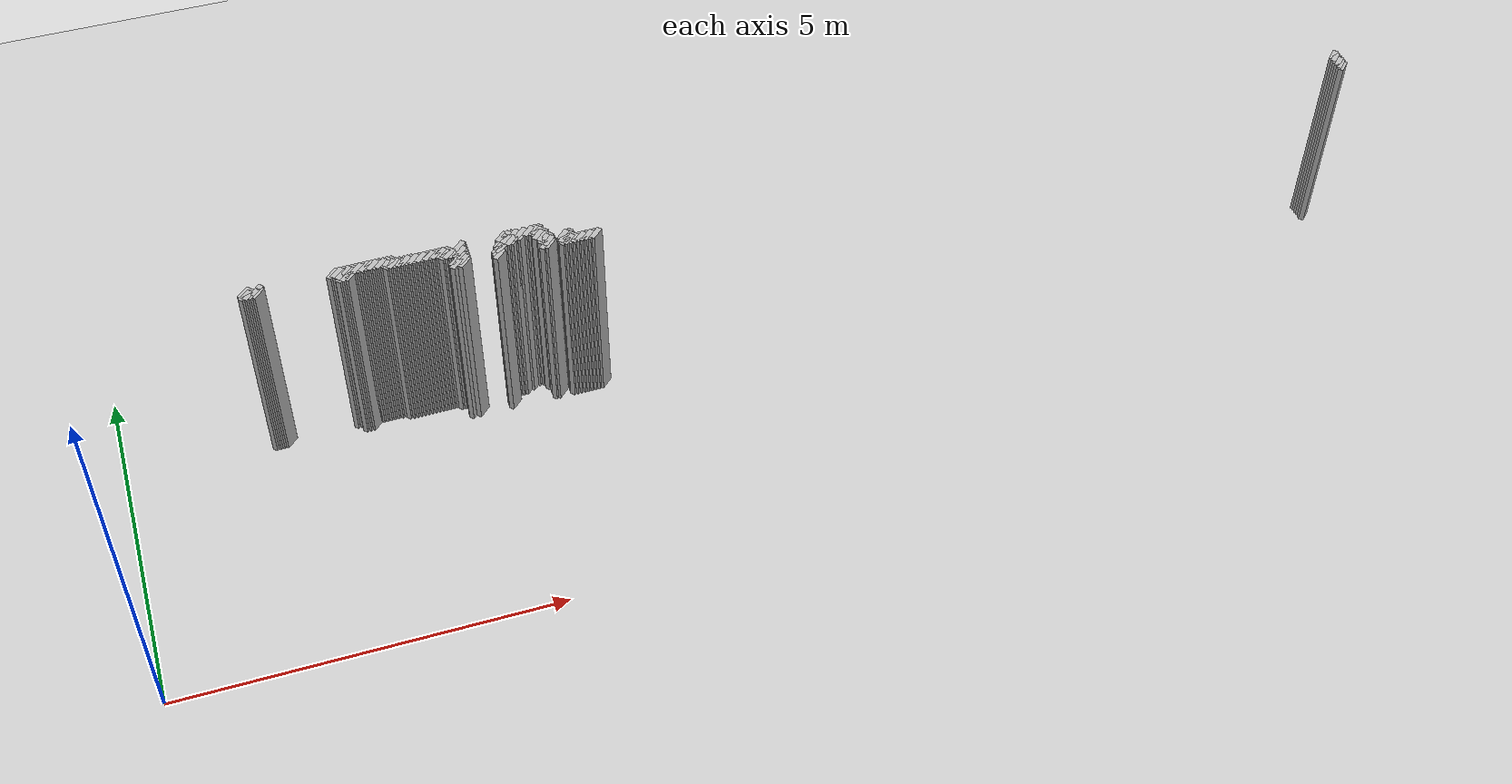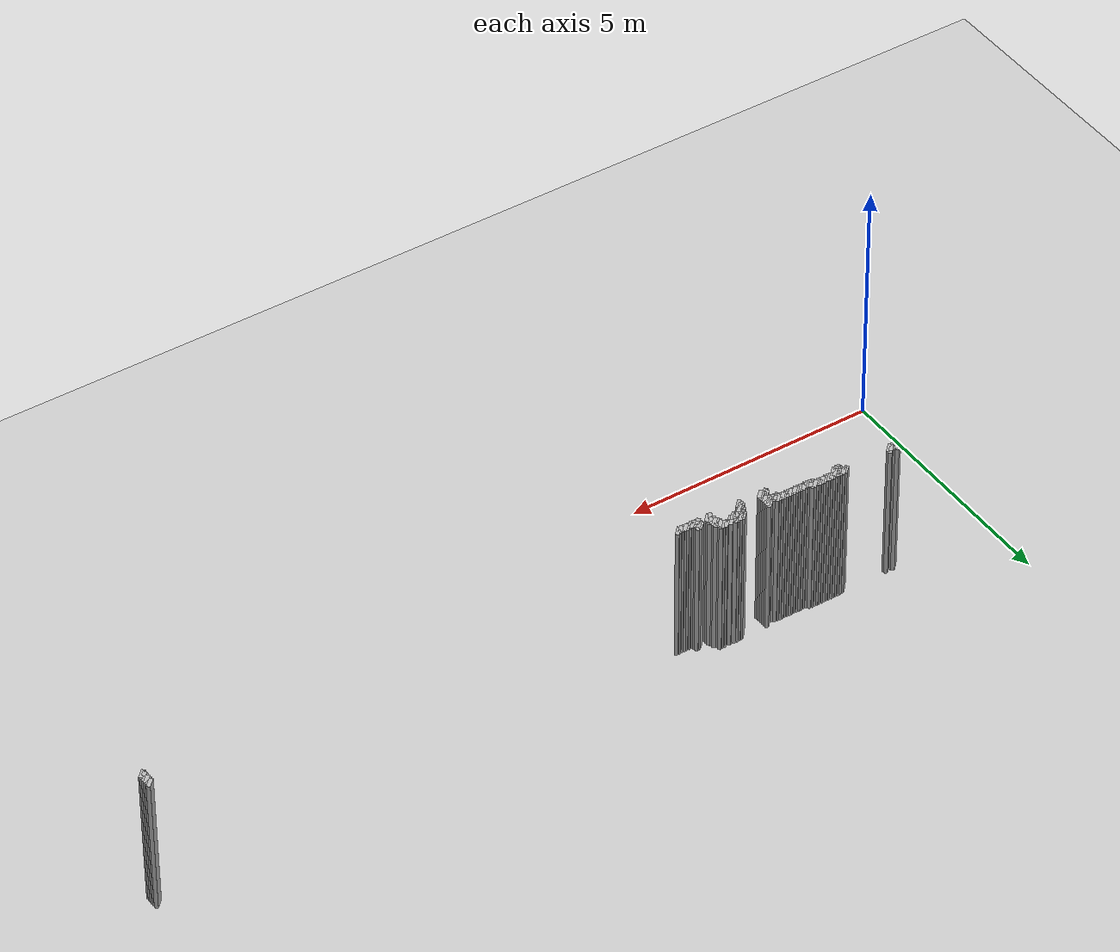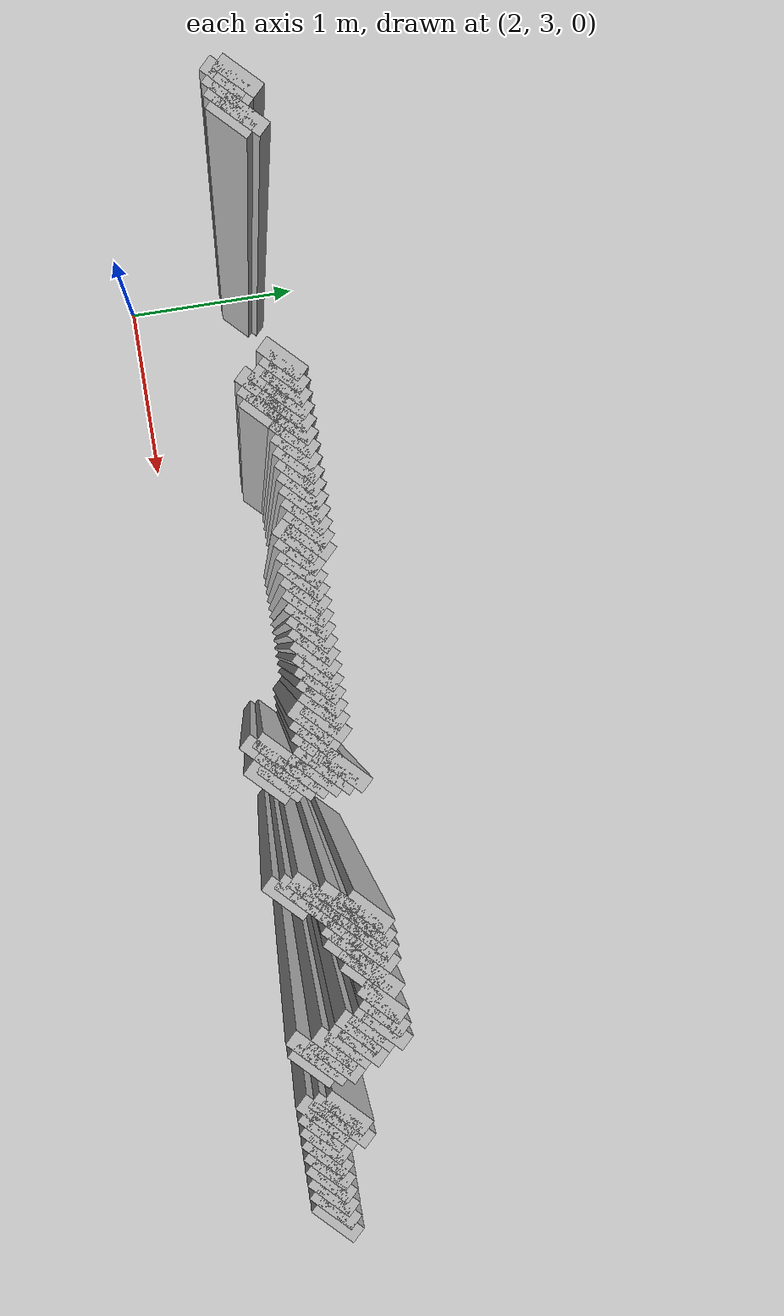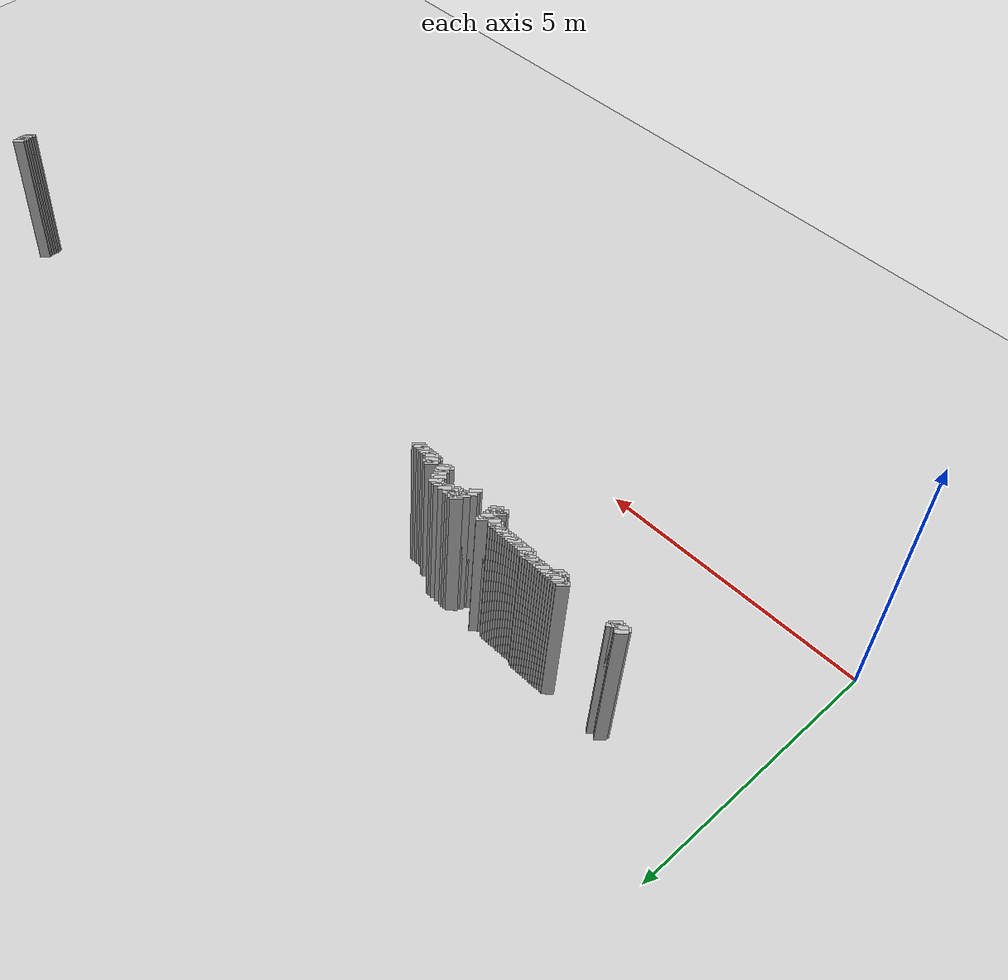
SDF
<sdf version="1.5">
 <world name="default">
  <include><uri>model://ground_plane</uri></include>
  <include><uri>model://sun</uri></include>
  <model name="grey_wall_3394">
   <static>1</static>
   <link name="link">
    <pose>2.0 3.7  1.4 0 0 -0.7853981633974483</pose>
    <collision name="collision">
     <geometry><box><size>0.0707106781186545 .2  2.8</size></box></geometry>
    </collision>
    <visual name="visual">
     <cast_shadows>0</cast_shadows>
     <geometry><box><size>0.0707106781186545 .2  2.8</size></box></geometry>
    </visual>
   </link>
  </model>
  <model name="grey_wall_3395">
   <static>1</static>
   <link name="link">
    <pose>2.15 3.7  1.4 0 0 -0.7853981633974483</pose>
    <collision name="collision">
     <geometry><box><size>0.0707106781186545 .2  2.8</size></box></geometry>
    </collision>
    <visual name="visual">
     <cast_shadows>0</cast_shadows>
     <geometry><box><size>0.0707106781186545 .2  2.8</size></box></geometry>
    </visual>
   </link>
  </model>
  <model name="grey_wall_3396">
   <static>1</static>
   <link name="link">
    <pose>3.1 3.7  1.4 0 0 -0.7853981633974483</pose>
    <collision name="collision">
     <geometry><box><size>0.0707106781186545 .2  2.8</size></box></geometry>
    </collision>
    <visual name="visual">
     <cast_shadows>0</cast_shadows>
     <geometry><box><size>0.0707106781186545 .2  2.8</size></box></geometry>
    </visual>
   </link>
  </model>
  <model name="grey_wall_3397">
   <static>1</static>
   <link name="link">
    <pose>3.1500000000000004 3.7  1.4 0 0 -0.7853981633974483</pose>
    <collision name="collision">
     <geometry><box><size>0.0707106781186545 .2  2.8</size></box></geometry>
    </collision>
    <visual name="visual">
     <cast_shadows>0</cast_shadows>
     <geometry><box><size>0.0707106781186545 .2  2.8</size></box></geometry>
    </visual>
   </link>
  </model>
  <model name="grey_wall_3398">
   <static>1</static>
   <link name="link">
    <pose>3.2 3.7  1.4 0 0 -0.7853981633974483</pose>
    <collision name="collision">
     <geometry><box><size>0.0707106781186545 .2  2.8</size></box></geometry>
    </collision>
    <visual name="visual">
     <cast_shadows>0</cast_shadows>
     <geometry><box><size>0.0707106781186545 .2  2.8</size></box></geometry>
    </visual>
   </link>
  </model>
  <model name="grey_wall_3399">
   <static>1</static>
   <link name="link">
    <pose>3.25 3.7  1.4 0 0 -0.7853981633974483</pose>
    <collision name="collision">
     <geometry><box><size>0.0707106781186545 .2  2.8</size></box></geometry>
    </collision>
    <visual name="visual">
     <cast_shadows>0</cast_shadows>
     <geometry><box><size>0.0707106781186545 .2  2.8</size></box></geometry>
    </visual>
   </link>
  </model>
  <model name="grey_wall_3400">
   <static>1</static>
   <link name="link">
    <pose>3.3000000000000003 3.7  1.4 0 0 -0.7853981633974483</pose>
    <collision name="collision">
     <geometry><box><size>0.0707106781186545 .2  2.8</size></box></geometry>
    </collision>
    <visual name="visual">
     <cast_shadows>0</cast_shadows>
     <geometry><box><size>0.0707106781186545 .2  2.8</size></box></geometry>
    </visual>
   </link>
  </model>
  <model name="grey_wall_3401">
   <static>1</static>
   <link name="link">
    <pose>3.35 3.7  1.4 0 0 -0.7853981633974483</pose>
    <collision name="collision">
     <geometry><box><size>0.0707106781186545 .2  2.8</size></box></geometry>
    </collision>
    <visual name="visual">
     <cast_shadows>0</cast_shadows>
     <geometry><box><size>0.0707106781186545 .2  2.8</size></box></geometry>
    </visual>
   </link>
  </model>
  <model name="grey_wall_3402">
   <static>1</static>
   <link name="link">
    <pose>3.4000000000000004 3.7  1.4 0 0 -0.7853981633974483</pose>
    <collision name="collision">
     <geometry><box><size>0.0707106781186545 .2  2.8</size></box></geometry>
    </collision>
    <visual name="visual">
     <cast_shadows>0</cast_shadows>
     <geometry><box><size>0.0707106781186545 .2  2.8</size></box></geometry>
    </visual>
   </link>
  </model>
  <model name="grey_wall_3403">
   <static>1</static>
   <link name="link">
    <pose>3.45 3.7  1.4 0 0 -0.7853981633974483</pose>
    <collision name="collision">
     <geometry><box><size>0.0707106781186545 .2  2.8</size></box></geometry>
    </collision>
    <visual name="visual">
     <cast_shadows>0</cast_shadows>
     <geometry><box><size>0.0707106781186545 .2  2.8</size></box></geometry>
    </visual>
   </link>
  </model>
  <model name="grey_wall_3404">
   <static>1</static>
   <link name="link">
    <pose>3.5 3.7  1.4 0 0 -0.7853981633974483</pose>
    <collision name="collision">
     <geometry><box><size>0.0707106781186545 .2  2.8</size></box></geometry>
    </collision>
    <visual name="visual">
     <cast_shadows>0</cast_shadows>
     <geometry><box><size>0.0707106781186545 .2  2.8</size></box></geometry>
    </visual>
   </link>
  </model>
  <model name="grey_wall_3405">
   <static>1</static>
   <link name="link">
    <pose>3.5500000000000003 3.7  1.4 0 0 -0.7853981633974483</pose>
    <collision name="collision">
     <geometry><box><size>0.0707106781186545 .2  2.8</size></box></geometry>
    </collision>
    <visual name="visual">
     <cast_shadows>0</cast_shadows>
     <geometry><box><size>0.0707106781186545 .2  2.8</size></box></geometry>
    </visual>
   </link>
  </model>
  <model name="grey_wall_3406">
   <static>1</static>
   <link name="link">
    <pose>3.6 3.7  1.4 0 0 -0.7853981633974483</pose>
    <collision name="collision">
     <geometry><box><size>0.0707106781186545 .2  2.8</size></box></geometry>
    </collision>
    <visual name="visual">
     <cast_shadows>0</cast_shadows>
     <geometry><box><size>0.0707106781186545 .2  2.8</size></box></geometry>
    </visual>
   </link>
  </model>
  <model name="grey_wall_3407">
   <static>1</static>
   <link name="link">
    <pose>3.6500000000000004 3.7  1.4 0 0 -0.7853981633974483</pose>
    <collision name="collision">
     <geometry><box><size>0.0707106781186545 .2  2.8</size></box></geometry>
    </collision>
    <visual name="visual">
     <cast_shadows>0</cast_shadows>
     <geometry><box><size>0.0707106781186545 .2  2.8</size></box></geometry>
    </visual>
   </link>
  </model>
  <model name="grey_wall_3408">
   <static>1</static>
   <link name="link">
    <pose>3.7 3.7  1.4 0 0 -0.7853981633974483</pose>
    <collision name="collision">
     <geometry><box><size>0.0707106781186545 .2  2.8</size></box></geometry>
    </collision>
    <visual name="visual">
     <cast_shadows>0</cast_shadows>
     <geometry><box><size>0.0707106781186545 .2  2.8</size></box></geometry>
    </visual>
   </link>
  </model>
  <model name="grey_wall_3409">
   <static>1</static>
   <link name="link">
    <pose>3.75 3.7  1.4 0 0 -0.7853981633974483</pose>
    <collision name="collision">
     <geometry><box><size>0.0707106781186545 .2  2.8</size></box></geometry>
    </collision>
    <visual name="visual">
     <cast_shadows>0</cast_shadows>
     <geometry><box><size>0.0707106781186545 .2  2.8</size></box></geometry>
    </visual>
   </link>
  </model>
  <model name="grey_wall_3410">
   <static>1</static>
   <link name="link">
    <pose>3.8000000000000003 3.7  1.4 0 0 -0.7853981633974483</pose>
    <collision name="collision">
     <geometry><box><size>0.0707106781186545 .2  2.8</size></box></geometry>
    </collision>
    <visual name="visual">
     <cast_shadows>0</cast_shadows>
     <geometry><box><size>0.0707106781186545 .2  2.8</size></box></geometry>
    </visual>
   </link>
  </model>
  <model name="grey_wall_3411">
   <static>1</static>
   <link name="link">
    <pose>4.7 3.7  1.4 0 0 -0.7853981633974394</pose>
    <collision name="collision">
     <geometry><box><size>0.07071067811865513 .2  2.8</size></box></geometry>
    </collision>
    <visual name="visual">
     <cast_shadows>0</cast_shadows>
     <geometry><box><size>0.07071067811865513 .2  2.8</size></box></geometry>
    </visual>
   </link>
  </model>
  <model name="grey_wall_3412">
   <static>1</static>
   <link name="link">
    <pose>5.25 3.7  1.4 0 0 -0.7853981633974394</pose>
    <collision name="collision">
     <geometry><box><size>0.07071067811865513 .2  2.8</size></box></geometry>
    </collision>
    <visual name="visual">
     <cast_shadows>0</cast_shadows>
     <geometry><box><size>0.07071067811865513 .2  2.8</size></box></geometry>
    </visual>
   </link>
  </model>
  <model name="grey_wall_3413">
   <static>1</static>
   <link name="link">
    <pose>5.300000000000001 3.7  1.4 0 0 -0.7853981633974394</pose>
    <collision name="collision">
     <geometry><box><size>0.07071067811865513 .2  2.8</size></box></geometry>
    </collision>
    <visual name="visual">
     <cast_shadows>0</cast_shadows>
     <geometry><box><size>0.07071067811865513 .2  2.8</size></box></geometry>
    </visual>
   </link>
  </model>
  <model name="grey_wall_3414">
   <static>1</static>
   <link name="link">
    <pose>5.3500000000000005 3.7  1.4 0 0 -0.7853981633974394</pose>
    <collision name="collision">
     <geometry><box><size>0.07071067811865513 .2  2.8</size></box></geometry>
    </collision>
    <visual name="visual">
     <cast_shadows>0</cast_shadows>
     <geometry><box><size>0.07071067811865513 .2  2.8</size></box></geometry>
    </visual>
   </link>
  </model>
  <model name="grey_wall_3415">
   <static>1</static>
   <link name="link">
    <pose>5.4 3.7  1.4 0 0 -0.7853981633974394</pose>
    <collision name="collision">
     <geometry><box><size>0.07071067811865513 .2  2.8</size></box></geometry>
    </collision>
    <visual name="visual">
     <cast_shadows>0</cast_shadows>
     <geometry><box><size>0.07071067811865513 .2  2.8</size></box></geometry>
    </visual>
   </link>
  </model>
  <model name="grey_wall_3416">
   <static>1</static>
   <link name="link">
    <pose>5.5 3.7  1.4 0 0 -0.7853981633974394</pose>
    <collision name="collision">
     <geometry><box><size>0.07071067811865513 .2  2.8</size></box></geometry>
    </collision>
    <visual name="visual">
     <cast_shadows>0</cast_shadows>
     <geometry><box><size>0.07071067811865513 .2  2.8</size></box></geometry>
    </visual>
   </link>
  </model>
  <model name="grey_wall_3417">
   <static>1</static>
   <link name="link">
    <pose>5.6000000000000005 3.7  1.4 0 0 -0.7853981633974394</pose>
    <collision name="collision">
     <geometry><box><size>0.07071067811865513 .2  2.8</size></box></geometry>
    </collision>
    <visual name="visual">
     <cast_shadows>0</cast_shadows>
     <geometry><box><size>0.07071067811865513 .2  2.8</size></box></geometry>
    </visual>
   </link>
  </model>
  <model name="grey_wall_3418">
   <static>1</static>
   <link name="link">
    <pose>5.65 3.7  1.4 0 0 -0.7853981633974394</pose>
    <collision name="collision">
     <geometry><box><size>0.07071067811865513 .2  2.8</size></box></geometry>
    </collision>
    <visual name="visual">
     <cast_shadows>0</cast_shadows>
     <geometry><box><size>0.07071067811865513 .2  2.8</size></box></geometry>
    </visual>
   </link>
  </model>
  <model name="grey_wall_3419">
   <static>1</static>
   <link name="link">
    <pose>5.7 3.7  1.4 0 0 -0.7853981633974394</pose>
    <collision name="collision">
     <geometry><box><size>0.07071067811865513 .2  2.8</size></box></geometry>
    </collision>
    <visual name="visual">
     <cast_shadows>0</cast_shadows>
     <geometry><box><size>0.07071067811865513 .2  2.8</size></box></geometry>
    </visual>
   </link>
  </model>
  <model name="grey_wall_3420">
   <static>1</static>
   <link name="link">
    <pose>17.05 3.7  1.4 0 0 -0.7853981633974749</pose>
    <collision name="collision">
     <geometry><box><size>0.07071067811865261 .2  2.8</size></box></geometry>
    </collision>
    <visual name="visual">
     <cast_shadows>0</cast_shadows>
     <geometry><box><size>0.07071067811865261 .2  2.8</size></box></geometry>
    </visual>
   </link>
  </model>
  <model name="grey_wall_3421">
   <static>1</static>
   <link name="link">
    <pose>2.0 3.6500000000000004  1.4 0 0 -0.7853981633974483</pose>
    <collision name="collision">
     <geometry><box><size>0.0707106781186545 .2  2.8</size></box></geometry>
    </collision>
    <visual name="visual">
     <cast_shadows>0</cast_shadows>
     <geometry><box><size>0.0707106781186545 .2  2.8</size></box></geometry>
    </visual>
   </link>
  </model>
  <model name="grey_wall_3422">
   <static>1</static>
   <link name="link">
    <pose>2.0500000000000003 3.6500000000000004  1.4 0 0 -0.7853981633974483</pose>
    <collision name="collision">
     <geometry><box><size>0.0707106781186545 .2  2.8</size></box></geometry>
    </collision>
    <visual name="visual">
     <cast_shadows>0</cast_shadows>
     <geometry><box><size>0.0707106781186545 .2  2.8</size></box></geometry>
    </visual>
   </link>
  </model>
  <model name="grey_wall_3423">
   <static>1</static>
   <link name="link">
    <pose>2.1 3.6500000000000004  1.4 0 0 -0.7853981633974483</pose>
    <collision name="collision">
     <geometry><box><size>0.0707106781186545 .2  2.8</size></box></geometry>
    </collision>
    <visual name="visual">
     <cast_shadows>0</cast_shadows>
     <geometry><box><size>0.0707106781186545 .2  2.8</size></box></geometry>
    </visual>
   </link>
  </model>
  <model name="grey_wall_3424">
   <static>1</static>
   <link name="link">
    <pose>2.15 3.6500000000000004  1.4 0 0 -0.7853981633974483</pose>
    <collision name="collision">
     <geometry><box><size>0.0707106781186545 .2  2.8</size></box></geometry>
    </collision>
    <visual name="visual">
     <cast_shadows>0</cast_shadows>
     <geometry><box><size>0.0707106781186545 .2  2.8</size></box></geometry>
    </visual>
   </link>
  </model>
  <model name="grey_wall_3425">
   <static>1</static>
   <link name="link">
    <pose>3.2 3.6500000000000004  1.4 0 0 -0.7853981633974483</pose>
    <collision name="collision">
     <geometry><box><size>0.0707106781186545 .2  2.8</size></box></geometry>
    </collision>
    <visual name="visual">
     <cast_shadows>0</cast_shadows>
     <geometry><box><size>0.0707106781186545 .2  2.8</size></box></geometry>
    </visual>
   </link>
  </model>
  <model name="grey_wall_3426">
   <static>1</static>
   <link name="link">
    <pose>3.3000000000000003 3.6500000000000004  1.4 0 0 -0.7853981633974483</pose>
    <collision name="collision">
     <geometry><box><size>0.0707106781186545 .2  2.8</size></box></geometry>
    </collision>
    <visual name="visual">
     <cast_shadows>0</cast_shadows>
     <geometry><box><size>0.0707106781186545 .2  2.8</size></box></geometry>
    </visual>
   </link>
  </model>
  <model name="grey_wall_3427">
   <static>1</static>
   <link name="link">
    <pose>3.8000000000000003 3.6500000000000004  1.4 0 0 -0.7853981633974483</pose>
    <collision name="collision">
     <geometry><box><size>0.0707106781186545 .2  2.8</size></box></geometry>
    </collision>
    <visual name="visual">
     <cast_shadows>0</cast_shadows>
     <geometry><box><size>0.0707106781186545 .2  2.8</size></box></geometry>
    </visual>
   </link>
  </model>
  <model name="grey_wall_3428">
   <static>1</static>
   <link name="link">
    <pose>3.85 3.6500000000000004  1.4 0 0 -0.7853981633974483</pose>
    <collision name="collision">
     <geometry><box><size>0.0707106781186545 .2  2.8</size></box></geometry>
    </collision>
    <visual name="visual">
     <cast_shadows>0</cast_shadows>
     <geometry><box><size>0.0707106781186545 .2  2.8</size></box></geometry>
    </visual>
   </link>
  </model>
  <model name="grey_wall_3429">
   <static>1</static>
   <link name="link">
    <pose>3.9000000000000004 3.6500000000000004  1.4 0 0 -0.7853981633974483</pose>
    <collision name="collision">
     <geometry><box><size>0.0707106781186545 .2  2.8</size></box></geometry>
    </collision>
    <visual name="visual">
     <cast_shadows>0</cast_shadows>
     <geometry><box><size>0.0707106781186545 .2  2.8</size></box></geometry>
    </visual>
   </link>
  </model>
  <model name="grey_wall_3430">
   <static>1</static>
   <link name="link">
    <pose>3.95 3.6500000000000004  1.4 0 0 -0.7853981633974483</pose>
    <collision name="collision">
     <geometry><box><size>0.0707106781186545 .2  2.8</size></box></geometry>
    </collision>
    <visual name="visual">
     <cast_shadows>0</cast_shadows>
     <geometry><box><size>0.0707106781186545 .2  2.8</size></box></geometry>
    </visual>
   </link>
  </model>
  <model name="grey_wall_3431">
   <static>1</static>
   <link name="link">
    <pose>4.0 3.6500000000000004  1.4 0 0 -0.7853981633974438</pose>
    <collision name="collision">
     <geometry><box><size>0.07071067811865482 .2  2.8</size></box></geometry>
    </collision>
    <visual name="visual">
     <cast_shadows>0</cast_shadows>
     <geometry><box><size>0.07071067811865482 .2  2.8</size></box></geometry>
    </visual>
   </link>
  </model>
  <model name="grey_wall_3432">
   <static>1</static>
   <link name="link">
    <pose>4.05 3.6500000000000004  1.4 0 0 -0.7853981633974394</pose>
    <collision name="collision">
     <geometry><box><size>0.07071067811865513 .2  2.8</size></box></geometry>
    </collision>
    <visual name="visual">
     <cast_shadows>0</cast_shadows>
     <geometry><box><size>0.07071067811865513 .2  2.8</size></box></geometry>
    </visual>
   </link>
  </model>
  <model name="grey_wall_3433">
   <static>1</static>
   <link name="link">
    <pose>4.1000000000000005 3.6500000000000004  1.4 0 0 -0.7853981633974394</pose>
    <collision name="collision">
     <geometry><box><size>0.07071067811865513 .2  2.8</size></box></geometry>
    </collision>
    <visual name="visual">
     <cast_shadows>0</cast_shadows>
     <geometry><box><size>0.07071067811865513 .2  2.8</size></box></geometry>
    </visual>
   </link>
  </model>
  <model name="grey_wall_3434">
   <static>1</static>
   <link name="link">
    <pose>4.15 3.6500000000000004  1.4 0 0 -0.7853981633974394</pose>
    <collision name="collision">
     <geometry><box><size>0.07071067811865513 .2  2.8</size></box></geometry>
    </collision>
    <visual name="visual">
     <cast_shadows>0</cast_shadows>
     <geometry><box><size>0.07071067811865513 .2  2.8</size></box></geometry>
    </visual>
   </link>
  </model>
  <model name="grey_wall_3435">
   <static>1</static>
   <link name="link">
    <pose>4.2 3.6500000000000004  1.4 0 0 -0.7853981633974394</pose>
    <collision name="collision">
     <geometry><box><size>0.07071067811865513 .2  2.8</size></box></geometry>
    </collision>
    <visual name="visual">
     <cast_shadows>0</cast_shadows>
     <geometry><box><size>0.07071067811865513 .2  2.8</size></box></geometry>
    </visual>
   </link>
  </model>
  <model name="grey_wall_3436">
   <static>1</static>
   <link name="link">
    <pose>4.25 3.6500000000000004  1.4 0 0 -0.7853981633974394</pose>
    <collision name="collision">
     <geometry><box><size>0.07071067811865513 .2  2.8</size></box></geometry>
    </collision>
    <visual name="visual">
     <cast_shadows>0</cast_shadows>
     <geometry><box><size>0.07071067811865513 .2  2.8</size></box></geometry>
    </visual>
   </link>
  </model>
  <model name="grey_wall_3437">
   <static>1</static>
   <link name="link">
    <pose>4.3 3.6500000000000004  1.4 0 0 -0.7853981633974394</pose>
    <collision name="collision">
     <geometry><box><size>0.07071067811865513 .2  2.8</size></box></geometry>
    </collision>
    <visual name="visual">
     <cast_shadows>0</cast_shadows>
     <geometry><box><size>0.07071067811865513 .2  2.8</size></box></geometry>
    </visual>
   </link>
  </model>
  <model name="grey_wall_3438">
   <static>1</static>
   <link name="link">
    <pose>4.3500000000000005 3.6500000000000004  1.4 0 0 -0.7853981633974394</pose>
    <collision name="collision">
     <geometry><box><size>0.07071067811865513 .2  2.8</size></box></geometry>
    </collision>
    <visual name="visual">
     <cast_shadows>0</cast_shadows>
     <geometry><box><size>0.07071067811865513 .2  2.8</size></box></geometry>
    </visual>
   </link>
  </model>
  <model name="grey_wall_3439">
   <static>1</static>
   <link name="link">
    <pose>4.4 3.6500000000000004  1.4 0 0 -0.7853981633974394</pose>
    <collision name="collision">
     <geometry><box><size>0.07071067811865513 .2  2.8</size></box></geometry>
    </collision>
    <visual name="visual">
     <cast_shadows>0</cast_shadows>
     <geometry><box><size>0.07071067811865513 .2  2.8</size></box></geometry>
    </visual>
   </link>
  </model>
  <model name="grey_wall_3440">
   <static>1</static>
   <link name="link">
    <pose>4.45 3.6500000000000004  1.4 0 0 -0.7853981633974394</pose>
    <collision name="collision">
     <geometry><box><size>0.07071067811865513 .2  2.8</size></box></geometry>
    </collision>
    <visual name="visual">
     <cast_shadows>0</cast_shadows>
     <geometry><box><size>0.07071067811865513 .2  2.8</size></box></geometry>
    </visual>
   </link>
  </model>
  <model name="grey_wall_3441">
   <static>1</static>
   <link name="link">
    <pose>4.5 3.6500000000000004  1.4 0 0 -0.7853981633974394</pose>
    <collision name="collision">
     <geometry><box><size>0.07071067811865513 .2  2.8</size></box></geometry>
    </collision>
    <visual name="visual">
     <cast_shadows>0</cast_shadows>
     <geometry><box><size>0.07071067811865513 .2  2.8</size></box></geometry>
    </visual>
   </link>
  </model>
  <model name="grey_wall_3442">
   <static>1</static>
   <link name="link">
    <pose>4.7 3.6500000000000004  1.4 0 0 -0.7853981633974394</pose>
    <collision name="collision">
     <geometry><box><size>0.07071067811865513 .2  2.8</size></box></geometry>
    </collision>
    <visual name="visual">
     <cast_shadows>0</cast_shadows>
     <geometry><box><size>0.07071067811865513 .2  2.8</size></box></geometry>
    </visual>
   </link>
  </model>
  <model name="grey_wall_3443">
   <static>1</static>
   <link name="link">
    <pose>5.25 3.6500000000000004  1.4 0 0 -0.7853981633974394</pose>
    <collision name="collision">
     <geometry><box><size>0.07071067811865513 .2  2.8</size></box></geometry>
    </collision>
    <visual name="visual">
     <cast_shadows>0</cast_shadows>
     <geometry><box><size>0.07071067811865513 .2  2.8</size></box></geometry>
    </visual>
   </link>
  </model>
  <model name="grey_wall_3444">
   <static>1</static>
   <link name="link">
    <pose>5.300000000000001 3.6500000000000004  1.4 0 0 -0.7853981633974394</pose>
    <collision name="collision">
     <geometry><box><size>0.07071067811865513 .2  2.8</size></box></geometry>
    </collision>
    <visual name="visual">
     <cast_shadows>0</cast_shadows>
     <geometry><box><size>0.07071067811865513 .2  2.8</size></box></geometry>
    </visual>
   </link>
  </model>
  <model name="grey_wall_3445">
   <static>1</static>
   <link name="link">
    <pose>5.4 3.6500000000000004  1.4 0 0 -0.7853981633974394</pose>
    <collision name="collision">
     <geometry><box><size>0.07071067811865513 .2  2.8</size></box></geometry>
    </collision>
    <visual name="visual">
     <cast_shadows>0</cast_shadows>
     <geometry><box><size>0.07071067811865513 .2  2.8</size></box></geometry>
    </visual>
   </link>
  </model>
  <model name="grey_wall_3446">
   <static>1</static>
   <link name="link">
    <pose>5.45 3.6500000000000004  1.4 0 0 -0.7853981633974394</pose>
    <collision name="collision">
     <geometry><box><size>0.07071067811865513 .2  2.8</size></box></geometry>
    </collision>
    <visual name="visual">
     <cast_shadows>0</cast_shadows>
     <geometry><box><size>0.07071067811865513 .2  2.8</size></box></geometry>
    </visual>
   </link>
  </model>
  <model name="grey_wall_3447">
   <static>1</static>
   <link name="link">
    <pose>5.5 3.6500000000000004  1.4 0 0 -0.7853981633974394</pose>
    <collision name="collision">
     <geometry><box><size>0.07071067811865513 .2  2.8</size></box></geometry>
    </collision>
    <visual name="visual">
     <cast_shadows>0</cast_shadows>
     <geometry><box><size>0.07071067811865513 .2  2.8</size></box></geometry>
    </visual>
   </link>
  </model>
  <model name="grey_wall_3448">
   <static>1</static>
   <link name="link">
    <pose>5.7 3.6500000000000004  1.4 0 0 -0.7853981633974394</pose>
    <collision name="collision">
     <geometry><box><size>0.07071067811865513 .2  2.8</size></box></geometry>
    </collision>
    <visual name="visual">
     <cast_shadows>0</cast_shadows>
     <geometry><box><size>0.07071067811865513 .2  2.8</size></box></geometry>
    </visual>
   </link>
  </model>
  <model name="grey_wall_3449">
   <static>1</static>
   <link name="link">
    <pose>17.05 3.6500000000000004  1.4 0 0 -0.7853981633974749</pose>
    <collision name="collision">
     <geometry><box><size>0.07071067811865261 .2  2.8</size></box></geometry>
    </collision>
    <visual name="visual">
     <cast_shadows>0</cast_shadows>
     <geometry><box><size>0.07071067811865261 .2  2.8</size></box></geometry>
    </visual>
   </link>
  </model>
  <model name="grey_wall_3450">
   <static>1</static>
   <link name="link">
    <pose>3.2 3.6  1.4 0 0 -0.7853981633974483</pose>
    <collision name="collision">
     <geometry><box><size>0.0707106781186545 .2  2.8</size></box></geometry>
    </collision>
    <visual name="visual">
     <cast_shadows>0</cast_shadows>
     <geometry><box><size>0.0707106781186545 .2  2.8</size></box></geometry>
    </visual>
   </link>
  </model>
  <model name="grey_wall_3451">
   <static>1</static>
   <link name="link">
    <pose>3.25 3.6  1.4 0 0 -0.7853981633974483</pose>
    <collision name="collision">
     <geometry><box><size>0.0707106781186545 .2  2.8</size></box></geometry>
    </collision>
    <visual name="visual">
     <cast_shadows>0</cast_shadows>
     <geometry><box><size>0.0707106781186545 .2  2.8</size></box></geometry>
    </visual>
   </link>
  </model>
  <model name="grey_wall_3452">
   <static>1</static>
   <link name="link">
    <pose>3.3000000000000003 3.6  1.4 0 0 -0.7853981633974483</pose>
    <collision name="collision">
     <geometry><box><size>0.0707106781186545 .2  2.8</size></box></geometry>
    </collision>
    <visual name="visual">
     <cast_shadows>0</cast_shadows>
     <geometry><box><size>0.0707106781186545 .2  2.8</size></box></geometry>
    </visual>
   </link>
  </model>
  <model name="grey_wall_3453">
   <static>1</static>
   <link name="link">
    <pose>4.5 3.6  1.4 0 0 -0.7853981633974394</pose>
    <collision name="collision">
     <geometry><box><size>0.07071067811865513 .2  2.8</size></box></geometry>
    </collision>
    <visual name="visual">
     <cast_shadows>0</cast_shadows>
     <geometry><box><size>0.07071067811865513 .2  2.8</size></box></geometry>
    </visual>
   </link>
  </model>
  <model name="grey_wall_3454">
   <static>1</static>
   <link name="link">
    <pose>4.55 3.6  1.4 0 0 -0.7853981633974394</pose>
    <collision name="collision">
     <geometry><box><size>0.07071067811865513 .2  2.8</size></box></geometry>
    </collision>
    <visual name="visual">
     <cast_shadows>0</cast_shadows>
     <geometry><box><size>0.07071067811865513 .2  2.8</size></box></geometry>
    </visual>
   </link>
  </model>
  <model name="grey_wall_3455">
   <static>1</static>
   <link name="link">
    <pose>4.6000000000000005 3.6  1.4 0 0 -0.7853981633974394</pose>
    <collision name="collision">
     <geometry><box><size>0.07071067811865513 .2  2.8</size></box></geometry>
    </collision>
    <visual name="visual">
     <cast_shadows>0</cast_shadows>
     <geometry><box><size>0.07071067811865513 .2  2.8</size></box></geometry>
    </visual>
   </link>
  </model>
  <model name="grey_wall_3456">
   <static>1</static>
   <link name="link">
    <pose>4.65 3.6  1.4 0 0 -0.7853981633974394</pose>
    <collision name="collision">
     <geometry><box><size>0.07071067811865513 .2  2.8</size></box></geometry>
    </collision>
    <visual name="visual">
     <cast_shadows>0</cast_shadows>
     <geometry><box><size>0.07071067811865513 .2  2.8</size></box></geometry>
    </visual>
   </link>
  </model>
  <model name="grey_wall_3457">
   <static>1</static>
   <link name="link">
    <pose>4.7 3.6  1.4 0 0 -0.7853981633974394</pose>
    <collision name="collision">
     <geometry><box><size>0.07071067811865513 .2  2.8</size></box></geometry>
    </collision>
    <visual name="visual">
     <cast_shadows>0</cast_shadows>
     <geometry><box><size>0.07071067811865513 .2  2.8</size></box></geometry>
    </visual>
   </link>
  </model>
  <model name="grey_wall_3458">
   <static>1</static>
   <link name="link">
    <pose>5.2 3.6  1.4 0 0 -0.7853981633974394</pose>
    <collision name="collision">
     <geometry><box><size>0.07071067811865513 .2  2.8</size></box></geometry>
    </collision>
    <visual name="visual">
     <cast_shadows>0</cast_shadows>
     <geometry><box><size>0.07071067811865513 .2  2.8</size></box></geometry>
    </visual>
   </link>
  </model>
  <model name="grey_wall_3459">
   <static>1</static>
   <link name="link">
    <pose>5.25 3.6  1.4 0 0 -0.7853981633974394</pose>
    <collision name="collision">
     <geometry><box><size>0.07071067811865513 .2  2.8</size></box></geometry>
    </collision>
    <visual name="visual">
     <cast_shadows>0</cast_shadows>
     <geometry><box><size>0.07071067811865513 .2  2.8</size></box></geometry>
    </visual>
   </link>
  </model>
  <model name="grey_wall_3460">
   <static>1</static>
   <link name="link">
    <pose>5.300000000000001 3.6  1.4 0 0 -0.7853981633974394</pose>
    <collision name="collision">
     <geometry><box><size>0.07071067811865513 .2  2.8</size></box></geometry>
    </collision>
    <visual name="visual">
     <cast_shadows>0</cast_shadows>
     <geometry><box><size>0.07071067811865513 .2  2.8</size></box></geometry>
    </visual>
   </link>
  </model>
  <model name="grey_wall_3461">
   <static>1</static>
   <link name="link">
    <pose>5.3500000000000005 3.6  1.4 0 0 -0.7853981633974394</pose>
    <collision name="collision">
     <geometry><box><size>0.07071067811865513 .2  2.8</size></box></geometry>
    </collision>
    <visual name="visual">
     <cast_shadows>0</cast_shadows>
     <geometry><box><size>0.07071067811865513 .2  2.8</size></box></geometry>
    </visual>
   </link>
  </model>
  <model name="grey_wall_3462">
   <static>1</static>
   <link name="link">
    <pose>5.4 3.6  1.4 0 0 -0.7853981633974394</pose>
    <collision name="collision">
     <geometry><box><size>0.07071067811865513 .2  2.8</size></box></geometry>
    </collision>
    <visual name="visual">
     <cast_shadows>0</cast_shadows>
     <geometry><box><size>0.07071067811865513 .2  2.8</size></box></geometry>
    </visual>
   </link>
  </model>
  <model name="grey_wall_3463">
   <static>1</static>
   <link name="link">
    <pose>5.7 3.6  1.4 0 0 -0.7853981633974394</pose>
    <collision name="collision">
     <geometry><box><size>0.07071067811865513 .2  2.8</size></box></geometry>
    </collision>
    <visual name="visual">
     <cast_shadows>0</cast_shadows>
     <geometry><box><size>0.07071067811865513 .2  2.8</size></box></geometry>
    </visual>
   </link>
  </model>
  <model name="grey_wall_3464">
   <static>1</static>
   <link name="link">
    <pose>5.75 3.6  1.4 0 0 -0.7853981633974394</pose>
    <collision name="collision">
     <geometry><box><size>0.07071067811865513 .2  2.8</size></box></geometry>
    </collision>
    <visual name="visual">
     <cast_shadows>0</cast_shadows>
     <geometry><box><size>0.07071067811865513 .2  2.8</size></box></geometry>
    </visual>
   </link>
  </model>
  <model name="grey_wall_3465">
   <static>1</static>
   <link name="link">
    <pose>17.05 3.6  1.4 0 0 -0.7853981633974749</pose>
    <collision name="collision">
     <geometry><box><size>0.07071067811865261 .2  2.8</size></box></geometry>
    </collision>
    <visual name="visual">
     <cast_shadows>0</cast_shadows>
     <geometry><box><size>0.07071067811865261 .2  2.8</size></box></geometry>
    </visual>
   </link>
  </model>
  <model name="grey_wall_3466">
   <static>1</static>
   <link name="link">
    <pose>4.7 3.5500000000000003  1.4 0 0 -0.7853981633974394</pose>
    <collision name="collision">
     <geometry><box><size>0.07071067811865513 .2  2.8</size></box></geometry>
    </collision>
    <visual name="visual">
     <cast_shadows>0</cast_shadows>
     <geometry><box><size>0.07071067811865513 .2  2.8</size></box></geometry>
    </visual>
   </link>
  </model>
  <model name="grey_wall_3467">
   <static>1</static>
   <link name="link">
    <pose>5.2 3.5500000000000003  1.4 0 0 -0.7853981633974394</pose>
    <collision name="collision">
     <geometry><box><size>0.07071067811865513 .2  2.8</size></box></geometry>
    </collision>
    <visual name="visual">
     <cast_shadows>0</cast_shadows>
     <geometry><box><size>0.07071067811865513 .2  2.8</size></box></geometry>
    </visual>
   </link>
  </model>
  <model name="grey_wall_3468">
   <static>1</static>
   <link name="link">
    <pose>5.75 3.5500000000000003  1.4 0 0 -0.7853981633974394</pose>
    <collision name="collision">
     <geometry><box><size>0.07071067811865513 .2  2.8</size></box></geometry>
    </collision>
    <visual name="visual">
     <cast_shadows>0</cast_shadows>
     <geometry><box><size>0.07071067811865513 .2  2.8</size></box></geometry>
    </visual>
   </link>
  </model>
  <model name="grey_wall_3469">
   <static>1</static>
   <link name="link">
    <pose>17.05 3.5500000000000003  1.4 0 0 -0.7853981633974749</pose>
    <collision name="collision">
     <geometry><box><size>0.07071067811865261 .2  2.8</size></box></geometry>
    </collision>
    <visual name="visual">
     <cast_shadows>0</cast_shadows>
     <geometry><box><size>0.07071067811865261 .2  2.8</size></box></geometry>
    </visual>
   </link>
  </model>
  <model name="grey_wall_3470">
   <static>1</static>
   <link name="link">
    <pose>4.7 3.5  1.4 0 0 -0.7853981633974394</pose>
    <collision name="collision">
     <geometry><box><size>0.07071067811865513 .2  2.8</size></box></geometry>
    </collision>
    <visual name="visual">
     <cast_shadows>0</cast_shadows>
     <geometry><box><size>0.07071067811865513 .2  2.8</size></box></geometry>
    </visual>
   </link>
  </model>
  <model name="grey_wall_3471">
   <static>1</static>
   <link name="link">
    <pose>5.15 3.5  1.4 0 0 -0.7853981633974394</pose>
    <collision name="collision">
     <geometry><box><size>0.07071067811865513 .2  2.8</size></box></geometry>
    </collision>
    <visual name="visual">
     <cast_shadows>0</cast_shadows>
     <geometry><box><size>0.07071067811865513 .2  2.8</size></box></geometry>
    </visual>
   </link>
  </model>
  <model name="grey_wall_3472">
   <static>1</static>
   <link name="link">
    <pose>5.2 3.5  1.4 0 0 -0.7853981633974394</pose>
    <collision name="collision">
     <geometry><box><size>0.07071067811865513 .2  2.8</size></box></geometry>
    </collision>
    <visual name="visual">
     <cast_shadows>0</cast_shadows>
     <geometry><box><size>0.07071067811865513 .2  2.8</size></box></geometry>
    </visual>
   </link>
  </model>
  <model name="grey_wall_3473">
   <static>1</static>
   <link name="link">
    <pose>5.75 3.5  1.4 0 0 -0.7853981633974394</pose>
    <collision name="collision">
     <geometry><box><size>0.07071067811865513 .2  2.8</size></box></geometry>
    </collision>
    <visual name="visual">
     <cast_shadows>0</cast_shadows>
     <geometry><box><size>0.07071067811865513 .2  2.8</size></box></geometry>
    </visual>
   </link>
  </model>
  <model name="grey_wall_3474">
   <static>1</static>
   <link name="link">
    <pose>5.800000000000001 3.5  1.4 0 0 -0.7853981633974394</pose>
    <collision name="collision">
     <geometry><box><size>0.07071067811865513 .2  2.8</size></box></geometry>
    </collision>
    <visual name="visual">
     <cast_shadows>0</cast_shadows>
     <geometry><box><size>0.07071067811865513 .2  2.8</size></box></geometry>
    </visual>
   </link>
  </model>
  <model name="grey_wall_3475">
   <static>1</static>
   <link name="link">
    <pose>6.0 3.5  1.4 0 0 -0.7853981633974394</pose>
    <collision name="collision">
     <geometry><box><size>0.07071067811865513 .2  2.8</size></box></geometry>
    </collision>
    <visual name="visual">
     <cast_shadows>0</cast_shadows>
     <geometry><box><size>0.07071067811865513 .2  2.8</size></box></geometry>
    </visual>
   </link>
  </model>
  <model name="grey_wall_3476">
   <static>1</static>
   <link name="link">
    <pose>6.050000000000001 3.5  1.4 0 0 -0.7853981633974394</pose>
    <collision name="collision">
     <geometry><box><size>0.07071067811865513 .2  2.8</size></box></geometry>
    </collision>
    <visual name="visual">
     <cast_shadows>0</cast_shadows>
     <geometry><box><size>0.07071067811865513 .2  2.8</size></box></geometry>
    </visual>
   </link>
  </model>
  <model name="grey_wall_3477">
   <static>1</static>
   <link name="link">
    <pose>17.05 3.5  1.4 0 0 -0.7853981633974749</pose>
    <collision name="collision">
     <geometry><box><size>0.07071067811865261 .2  2.8</size></box></geometry>
    </collision>
    <visual name="visual">
     <cast_shadows>0</cast_shadows>
     <geometry><box><size>0.07071067811865261 .2  2.8</size></box></geometry>
    </visual>
   </link>
  </model>
  <model name="grey_wall_3478">
   <static>1</static>
   <link name="link">
    <pose>4.6000000000000005 3.45  1.4 0 0 -0.7853981633974394</pose>
    <collision name="collision">
     <geometry><box><size>0.07071067811865513 .2  2.8</size></box></geometry>
    </collision>
    <visual name="visual">
     <cast_shadows>0</cast_shadows>
     <geometry><box><size>0.07071067811865513 .2  2.8</size></box></geometry>
    </visual>
   </link>
  </model>
  <model name="grey_wall_3479">
   <static>1</static>
   <link name="link">
    <pose>4.65 3.45  1.4 0 0 -0.7853981633974394</pose>
    <collision name="collision">
     <geometry><box><size>0.07071067811865513 .2  2.8</size></box></geometry>
    </collision>
    <visual name="visual">
     <cast_shadows>0</cast_shadows>
     <geometry><box><size>0.07071067811865513 .2  2.8</size></box></geometry>
    </visual>
   </link>
  </model>
  <model name="grey_wall_3480">
   <static>1</static>
   <link name="link">
    <pose>4.7 3.45  1.4 0 0 -0.7853981633974394</pose>
    <collision name="collision">
     <geometry><box><size>0.07071067811865513 .2  2.8</size></box></geometry>
    </collision>
    <visual name="visual">
     <cast_shadows>0</cast_shadows>
     <geometry><box><size>0.07071067811865513 .2  2.8</size></box></geometry>
    </visual>
   </link>
  </model>
  <model name="grey_wall_3481">
   <static>1</static>
   <link name="link">
    <pose>5.15 3.45  1.4 0 0 -0.7853981633974394</pose>
    <collision name="collision">
     <geometry><box><size>0.07071067811865513 .2  2.8</size></box></geometry>
    </collision>
    <visual name="visual">
     <cast_shadows>0</cast_shadows>
     <geometry><box><size>0.07071067811865513 .2  2.8</size></box></geometry>
    </visual>
   </link>
  </model>
  <model name="grey_wall_3482">
   <static>1</static>
   <link name="link">
    <pose>5.800000000000001 3.45  1.4 0 0 -0.7853981633974394</pose>
    <collision name="collision">
     <geometry><box><size>0.07071067811865513 .2  2.8</size></box></geometry>
    </collision>
    <visual name="visual">
     <cast_shadows>0</cast_shadows>
     <geometry><box><size>0.07071067811865513 .2  2.8</size></box></geometry>
    </visual>
   </link>
  </model>
  <model name="grey_wall_3483">
   <static>1</static>
   <link name="link">
    <pose>6.0 3.45  1.4 0 0 -0.7853981633974394</pose>
    <collision name="collision">
     <geometry><box><size>0.07071067811865513 .2  2.8</size></box></geometry>
    </collision>
    <visual name="visual">
     <cast_shadows>0</cast_shadows>
     <geometry><box><size>0.07071067811865513 .2  2.8</size></box></geometry>
    </visual>
   </link>
  </model>
  <model name="grey_wall_3484">
   <static>1</static>
   <link name="link">
    <pose>6.050000000000001 3.45  1.4 0 0 -0.7853981633974394</pose>
    <collision name="collision">
     <geometry><box><size>0.07071067811865513 .2  2.8</size></box></geometry>
    </collision>
    <visual name="visual">
     <cast_shadows>0</cast_shadows>
     <geometry><box><size>0.07071067811865513 .2  2.8</size></box></geometry>
    </visual>
   </link>
  </model>
  <model name="grey_wall_3485">
   <static>1</static>
   <link name="link">
    <pose>17.05 3.45  1.4 0 0 -0.7853981633974749</pose>
    <collision name="collision">
     <geometry><box><size>0.07071067811865261 .2  2.8</size></box></geometry>
    </collision>
    <visual name="visual">
     <cast_shadows>0</cast_shadows>
     <geometry><box><size>0.07071067811865261 .2  2.8</size></box></geometry>
    </visual>
   </link>
  </model>
  <model name="grey_wall_3486">
   <static>1</static>
   <link name="link">
    <pose>4.6000000000000005 3.4000000000000004  1.4 0 0 -0.7853981633974394</pose>
    <collision name="collision">
     <geometry><box><size>0.07071067811865513 .2  2.8</size></box></geometry>
    </collision>
    <visual name="visual">
     <cast_shadows>0</cast_shadows>
     <geometry><box><size>0.07071067811865513 .2  2.8</size></box></geometry>
    </visual>
   </link>
  </model>
  <model name="grey_wall_3487">
   <static>1</static>
   <link name="link">
    <pose>4.7 3.4000000000000004  1.4 0 0 -0.7853981633974394</pose>
    <collision name="collision">
     <geometry><box><size>0.07071067811865513 .2  2.8</size></box></geometry>
    </collision>
    <visual name="visual">
     <cast_shadows>0</cast_shadows>
     <geometry><box><size>0.07071067811865513 .2  2.8</size></box></geometry>
    </visual>
   </link>
  </model>
  <model name="grey_wall_3488">
   <static>1</static>
   <link name="link">
    <pose>5.15 3.4000000000000004  1.4 0 0 -0.7853981633974394</pose>
    <collision name="collision">
     <geometry><box><size>0.07071067811865513 .2  2.8</size></box></geometry>
    </collision>
    <visual name="visual">
     <cast_shadows>0</cast_shadows>
     <geometry><box><size>0.07071067811865513 .2  2.8</size></box></geometry>
    </visual>
   </link>
  </model>
  <model name="grey_wall_3489">
   <static>1</static>
   <link name="link">
    <pose>5.75 3.4000000000000004  1.4 0 0 -0.7853981633974394</pose>
    <collision name="collision">
     <geometry><box><size>0.07071067811865513 .2  2.8</size></box></geometry>
    </collision>
    <visual name="visual">
     <cast_shadows>0</cast_shadows>
     <geometry><box><size>0.07071067811865513 .2  2.8</size></box></geometry>
    </visual>
   </link>
  </model>
  <model name="grey_wall_3490">
   <static>1</static>
   <link name="link">
    <pose>5.800000000000001 3.4000000000000004  1.4 0 0 -0.7853981633974394</pose>
    <collision name="collision">
     <geometry><box><size>0.07071067811865513 .2  2.8</size></box></geometry>
    </collision>
    <visual name="visual">
     <cast_shadows>0</cast_shadows>
     <geometry><box><size>0.07071067811865513 .2  2.8</size></box></geometry>
    </visual>
   </link>
  </model>
  <model name="grey_wall_3491">
   <static>1</static>
   <link name="link">
    <pose>6.0 3.4000000000000004  1.4 0 0 -0.7853981633974394</pose>
    <collision name="collision">
     <geometry><box><size>0.07071067811865513 .2  2.8</size></box></geometry>
    </collision>
    <visual name="visual">
     <cast_shadows>0</cast_shadows>
     <geometry><box><size>0.07071067811865513 .2  2.8</size></box></geometry>
    </visual>
   </link>
  </model>
  <model name="grey_wall_3492">
   <static>1</static>
   <link name="link">
    <pose>6.050000000000001 3.4000000000000004  1.4 0 0 -0.7853981633974394</pose>
    <collision name="collision">
     <geometry><box><size>0.07071067811865513 .2  2.8</size></box></geometry>
    </collision>
    <visual name="visual">
     <cast_shadows>0</cast_shadows>
     <geometry><box><size>0.07071067811865513 .2  2.8</size></box></geometry>
    </visual>
   </link>
  </model>
  <model name="grey_wall_3493">
   <static>1</static>
   <link name="link">
    <pose>6.1000000000000005 3.4000000000000004  1.4 0 0 -0.7853981633974394</pose>
    <collision name="collision">
     <geometry><box><size>0.07071067811865513 .2  2.8</size></box></geometry>
    </collision>
    <visual name="visual">
     <cast_shadows>0</cast_shadows>
     <geometry><box><size>0.07071067811865513 .2  2.8</size></box></geometry>
    </visual>
   </link>
  </model>
  <model name="grey_wall_3494">
   <static>1</static>
   <link name="link">
    <pose>6.15 3.4000000000000004  1.4 0 0 -0.7853981633974394</pose>
    <collision name="collision">
     <geometry><box><size>0.07071067811865513 .2  2.8</size></box></geometry>
    </collision>
    <visual name="visual">
     <cast_shadows>0</cast_shadows>
     <geometry><box><size>0.07071067811865513 .2  2.8</size></box></geometry>
    </visual>
   </link>
  </model>
  <model name="grey_wall_3495">
   <static>1</static>
   <link name="link">
    <pose>6.2 3.4000000000000004  1.4 0 0 -0.7853981633974394</pose>
    <collision name="collision">
     <geometry><box><size>0.07071067811865513 .2  2.8</size></box></geometry>
    </collision>
    <visual name="visual">
     <cast_shadows>0</cast_shadows>
     <geometry><box><size>0.07071067811865513 .2  2.8</size></box></geometry>
    </visual>
   </link>
  </model>
  <model name="grey_wall_3496">
   <static>1</static>
   <link name="link">
    <pose>6.25 3.4000000000000004  1.4 0 0 -0.7853981633974394</pose>
    <collision name="collision">
     <geometry><box><size>0.07071067811865513 .2  2.8</size></box></geometry>
    </collision>
    <visual name="visual">
     <cast_shadows>0</cast_shadows>
     <geometry><box><size>0.07071067811865513 .2  2.8</size></box></geometry>
    </visual>
   </link>
  </model>
  <model name="grey_wall_3497">
   <static>1</static>
   <link name="link">
    <pose>6.300000000000001 3.4000000000000004  1.4 0 0 -0.7853981633974394</pose>
    <collision name="collision">
     <geometry><box><size>0.07071067811865513 .2  2.8</size></box></geometry>
    </collision>
    <visual name="visual">
     <cast_shadows>0</cast_shadows>
     <geometry><box><size>0.07071067811865513 .2  2.8</size></box></geometry>
    </visual>
   </link>
  </model>
  <model name="grey_wall_3498">
   <static>1</static>
   <link name="link">
    <pose>6.3500000000000005 3.4000000000000004  1.4 0 0 -0.7853981633974394</pose>
    <collision name="collision">
     <geometry><box><size>0.07071067811865513 .2  2.8</size></box></geometry>
    </collision>
    <visual name="visual">
     <cast_shadows>0</cast_shadows>
     <geometry><box><size>0.07071067811865513 .2  2.8</size></box></geometry>
    </visual>
   </link>
  </model>
  <model name="grey_wall_3499">
   <static>1</static>
   <link name="link">
    <pose>6.4 3.4000000000000004  1.4 0 0 -0.7853981633974394</pose>
    <collision name="collision">
     <geometry><box><size>0.07071067811865513 .2  2.8</size></box></geometry>
    </collision>
    <visual name="visual">
     <cast_shadows>0</cast_shadows>
     <geometry><box><size>0.07071067811865513 .2  2.8</size></box></geometry>
    </visual>
   </link>
  </model>
 </world>
</sdf>
